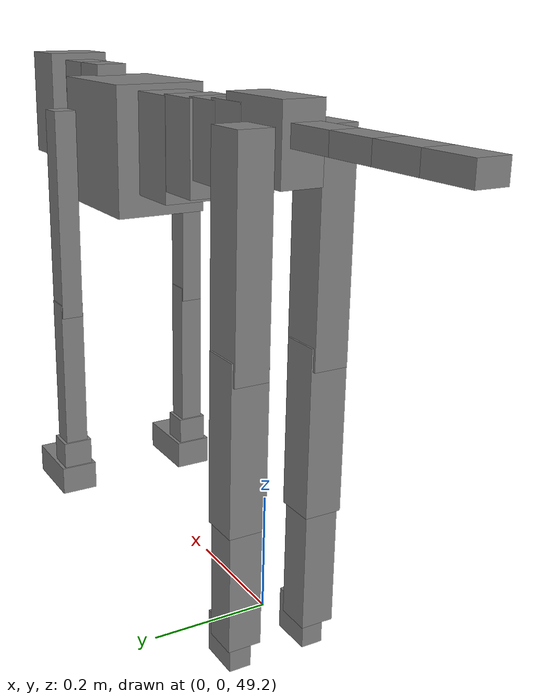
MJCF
<mujoco model="dog">

    <default>
        <joint armature="0.02" stiffness="1" damping="0.2" limited="true"/>
        <geom condim="3" friction="1 0.05 0.05" margin="0.01"/>
        <motor ctrllimited="true" ctrlrange="-1.0 1.0" forcelimited="true" gear="50"/>
    </default>

    <compiler inertiafromgeom="true" angle="radian"/>

    <option timestep="0.016" iterations="50" tolerance="1e-10" solver="Newton" jacobian="dense" cone="pyramidal"/>

    <size nconmax="20000" njmax="60000" nstack="5000000"/>
    <visual>
        <map force="0.1" zfar="30"/>
        <rgba haze="0.15 0.25 0.35 1"/>
        <quality shadowsize="2048"/>
        <global offwidth="800" offheight="800"/>
    </visual>

    <asset>
        <texture type="skybox" builtin="gradient" rgb1="0.3 0.5 0.7" rgb2="0 0 0" width="512" height="512"/>
        <texture name="texplane" type="2d" builtin="checker" rgb1=".2 .3 .4" rgb2=".1 0.15 0.2" width="512" height="512"
                 mark="cross" markrgb=".8 .8 .8"/>
        <texture name="texgeom" type="cube" builtin="flat" mark="cross" width="127" height="1278" rgb1="0.8 0.6 0.4"
                 rgb2="0.8 0.6 0.4" markrgb="1 1 1" random="0.01"/>

        <material name="matplane" reflectance="0.3" texture="texplane" texrepeat="1 1" texuniform="true"/>
        <material name="matgeom" texture="texgeom" texuniform="true" rgba="0.8 0.6 .4 1"/>
    </asset>

    <worldbody>
        <geom name="floor" pos="0 0 0" size="0 0 .25" type="plane" material="matplane" condim="3"/>

        <light directional="false" diffuse=".2 .2 .2" specular="0 0 0" pos="0 0 5" dir="0 0 -1" castshadow="false"/>
        <light mode="targetbodycom" target="torso" directional="false" diffuse=".8 .8 .8" specular="0.3 0.3 0.3"
               pos="0 0 4.0" dir="0 0 -1"/>

        <body name="root" pos="0 0 50">
            <freejoint name="root_1"/>
            <geom type="box" pos="0 0 -0.02" size="0.0774  0.0358  0.063" density="2030"/>

            <body name="spine1" pos="0.054 0 0">
                <joint name="spine1_y" axis="0 1 0" range="0 0.7" limited="true"/>
                <geom type="box" pos="0.02375 0 -0.03" size="0.04375  0.0375  0.05985" density="2030"/>

                <body name="spine2" pos="0.0612 0 0">
                    <joint name="spine2_y" axis="0 1 0" range="-0.15 0.15" limited="true"/>
                    <geom type="box" pos="0.03555  0  -0.04" size="0.04055  0.039  0.06615" density="2030"/>

                    <body name="spine3" pos="0.0730 0 0">
                        <joint name="spine3_y" axis="0 1 0" range="-0.15 0.15" limited="true"/>
                        <geom type="box" pos="0.03555  0  -0.057" size="0.04555  0.0445  0.081" density="2030"/>

                        <body name="spine4" pos="0.0780 0 0">
                            <joint name="spine4_y" axis="0 1 0" range="-0.15 0.15" limited="true"/>
                            <geom type="box" pos="0.05265  0  -0.07" size="0.05265  0.045  0.09135" density="2030"/>

                            <body name="torso" pos="0.1082 0 0">
                                <joint name="torso_y" axis="0 1 0" range="-0.15 0.15" limited="true"/>
                                <geom type="box" pos="0.11925  0  -0.085" size="0.11925  0.085  0.11745"
                                      density="2030"/>

                                <body name="neck1" pos="0.2160  0   0.0180">
                                    <joint name="neck1_y" axis="0 1 0" range="-1.2  -1" limited="true"/>
                                    <geom type="box" pos="0.0423  0  0" size="0.0423  0.03  0.036" density="2325"/>

                                    <body name="neck2" pos="0.0853  0  0">
                                        <joint name="neck2_y" axis="0 1 0" range="0.1  0" limited="true"/>
                                        <geom type="box" pos="0.0423  0  0" size="0.0423  0.03  0.036" density="2325"/>

                                        <body name="head" pos="0.0853  0  0">
                                            <joint name="head_y" axis="0 1 0" range="-0.3  -0.2" limited="true"/>
                                            <geom type="box" pos="0.0531  0  -0.055" size="0.0531  0.06  0.1044"
                                                  density="4030"/>

                                        </body>
                                    </body>
                                </body>

                                <body name="front_shoulder" pos="0.156  0   -0.0480">
                                    <joint name="front_shoulder_y" axis="0 1 0" range="-1 1.5" limited="true"/>
                                    <geom type="box" pos="0 0.13 -0.1708" size="0.0239  0.0204  0.1974" density="1158"/>
                                    <geom type="box" pos="0 -0.13 -0.1708" size="0.0239  0.0204  0.1974"
                                          density="1158"/>

                                    <body name="front_elbow" pos="0  0  -0.3416">
                                        <joint name="front_elbow_y" axis="0 1 0" range="-2 0" limited="true"/>
                                        <geom type="box" pos="0 0.13 -0.1507" size="0.0214  0.0219  0.1507"
                                              density="1081"/>
                                        <geom type="box" pos="0 -0.13 -0.1507" size="0.0214  0.0219  0.1507"
                                              density="1081"/>

                                        <body name="front_wrist" pos="0  0  -0.3014">
                                            <joint name="front_wrist_y" axis="0 1 0" range="-0.2 0" limited="true"/>
                                            <geom type="box" pos="0 0.13 -0.0266" size="0.0255  0.0283  0.0397"
                                                  density="1664"/>
                                            <geom type="box" pos="0 -0.13 -0.0266" size="0.0255  0.0283  0.0397"
                                                  density="1664"/>

                                            <body name="front_finger_end" pos="0  0  -0.0532">
                                                <joint name="front_finger_y" axis="0 1 0" range="-0.4 1"
                                                       limited="true"/>
                                                <geom type="box" pos="0.0350  0.13  -0.0124"
                                                      size="0.0642  0.0350  0.0274" density="1515"/>
                                                <geom type="box" pos="0.0350  -0.13  -0.0124"
                                                      size="0.0642  0.0350  0.0274" density="1515"/>

                                            </body>

                                        </body>
                                    </body>
                                </body>

                            </body>
                        </body>
                    </body>
                </body>
            </body>

            <body name="back_hip" pos="-0.03 0 -0.018">
                <joint name="back_hip_y" axis="0 1 0" range="-1.5 0.3" limited="true"/>
                <geom type="box" pos="0 0.07 -0.1640" size="0.0378  0.0297  0.1868" density="1154"/>
                <geom type="box" pos="0 -0.07 -0.1640" size="0.0378  0.0297  0.1868" density="1154"/>

                <body name="back_knee" pos="0  0  -0.3281">
                    <joint name="back_knee_y" axis="0 1 0" range="0 2.8" limited="true"/>
                    <geom type="box" pos="0 0.07 -0.1283" size="0.0332  0.0327  0.1438" density="1227"/>
                    <geom type="box" pos="0 -0.07 -0.1283" size="0.0332  0.0327  0.1438" density="1227"/>

                    <body name="back_ankle" pos="0  0  -0.2566">
                        <joint name="back_ankle_y" axis="0 1 0" range="-2.2 0" limited="true"/>
                        <geom type="box" pos="0 0.07 -0.1047" size="0.0293  0.0293  0.1160" density="1284"/>
                        <geom type="box" pos="0 -0.07 -0.1047" size="0.0293  0.0293  0.1160" density="1284"/>

                        <body name="back_toe_end" pos="0  0  -0.2095">
                            <joint name="back_toe_y" axis="0 1 0" range="-0.4 1" limited="true"/>
                            <geom type="box" pos="0.0194  0.07  -0.0221" size="0.0356  0.0194  0.0371" density="1515"/>
                            <geom type="box" pos="0.0194  -0.07  -0.0221" size="0.0356  0.0194  0.0371" density="1515"/>

                        </body>
                    </body>
                </body>
            </body>

            <body name="tail1" pos="-0.074 0 -0.006">
                <joint name="tail1_y" axis="0 1 0" range="-0.2 0.2" limited="true"/>
                <geom type="box" pos="-0.0536  0  0" size="0.045  0.025  0.0175" density="1587"/>

                <body name="tail2" pos="-0.09 0 0">
                    <joint name="tail2_y" axis="0 1 0" range="-0.2 0.2" limited="true"/>
                    <geom type="box" pos="-0.0536  0  0" size="0.045  0.025  0.0175" density="1587"/>

                    <body name="tail3" pos="-0.09 0 0">
                        <joint name="tail3_y" axis="0 1 0" range="-0.2 0.2" limited="true"/>
                        <geom type="box" pos="-0.0536  0  0" size="0.045  0.025  0.0175" density="1587"/>

                        <body name="tail4" pos="-0.09 0 0">
                            <joint name="tail4_y" axis="0 1 0" range="-0.2 0.2" limited="true"/>
                            <geom type="box" pos="-0.0536  0  0" size="0.045  0.025  0.0175" density="1587"/>

                        </body>
                    </body>
                </body>
            </body>
        </body>
    </worldbody>

    <actuator>
        <motor joint="spine1_y" forcerange="-150 150     "/>
        <motor joint="spine2_y" forcerange="-150 150     "/>
        <motor joint="spine3_y" forcerange="-150 150     "/>
        <motor joint="spine4_y" forcerange="-150 150     "/>
        <motor joint="torso_y" forcerange="-150 150     "/>
        <motor joint="neck1_y" forcerange="-100 100       "/>
        <motor joint="neck2_y" forcerange="-100 100       "/>
        <motor joint="head_y" forcerange="-150 150       "/>
        <motor joint="front_shoulder_y" forcerange="-112.27 123.84"/>
        <motor joint="front_elbow_y" forcerange="-155.90 103.22"/>
        <motor joint="front_wrist_y" forcerange="-113.86 112.56"/>
        <motor joint="front_finger_y" forcerange="-77.58 69.24"/>
        <motor joint="back_hip_y" forcerange="-283.62 312.00"/>
        <motor joint="back_knee_y" forcerange="-375.43 299.90"/>
        <motor joint="back_angle_y" forcerange="-166.23 202.43"/>
        <motor joint="back_toe_y" forcerange="-32.37 42.79"/>
        <motor joint="tail1_y" forcerange="-50 50     "/>
        <motor joint="tail2_y" forcerange="-50 50     "/>
        <motor joint="tail3_y" forcerange="-50 50     "/>
        <motor joint="tail4_y" forcerange="-50 50     "/>
    </actuator>
</mujoco>
